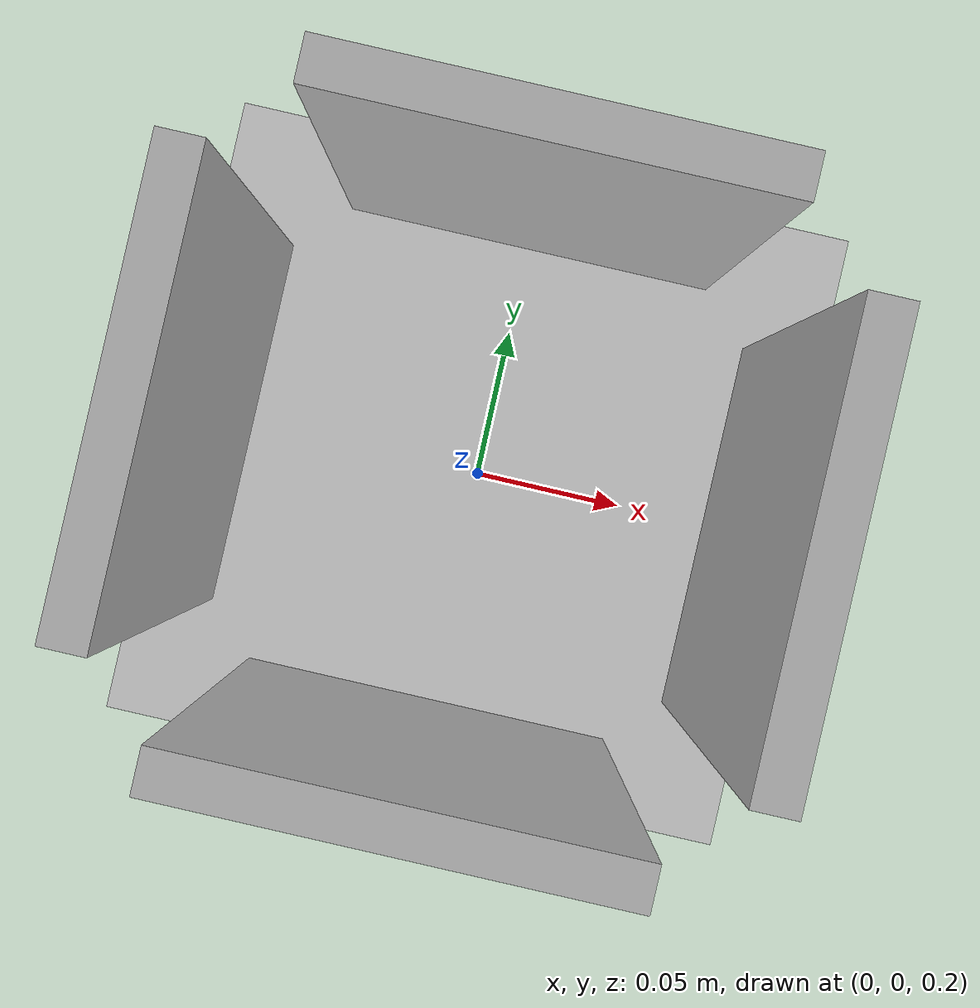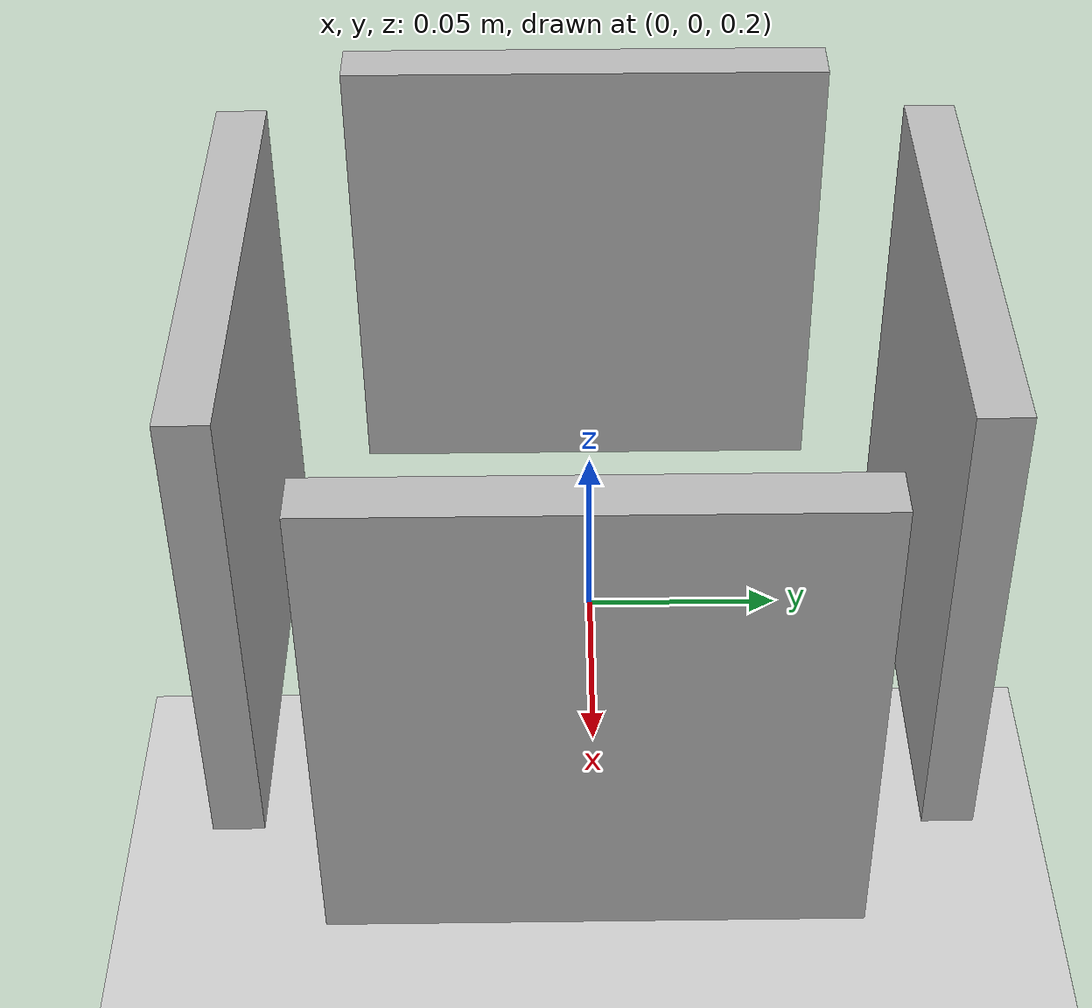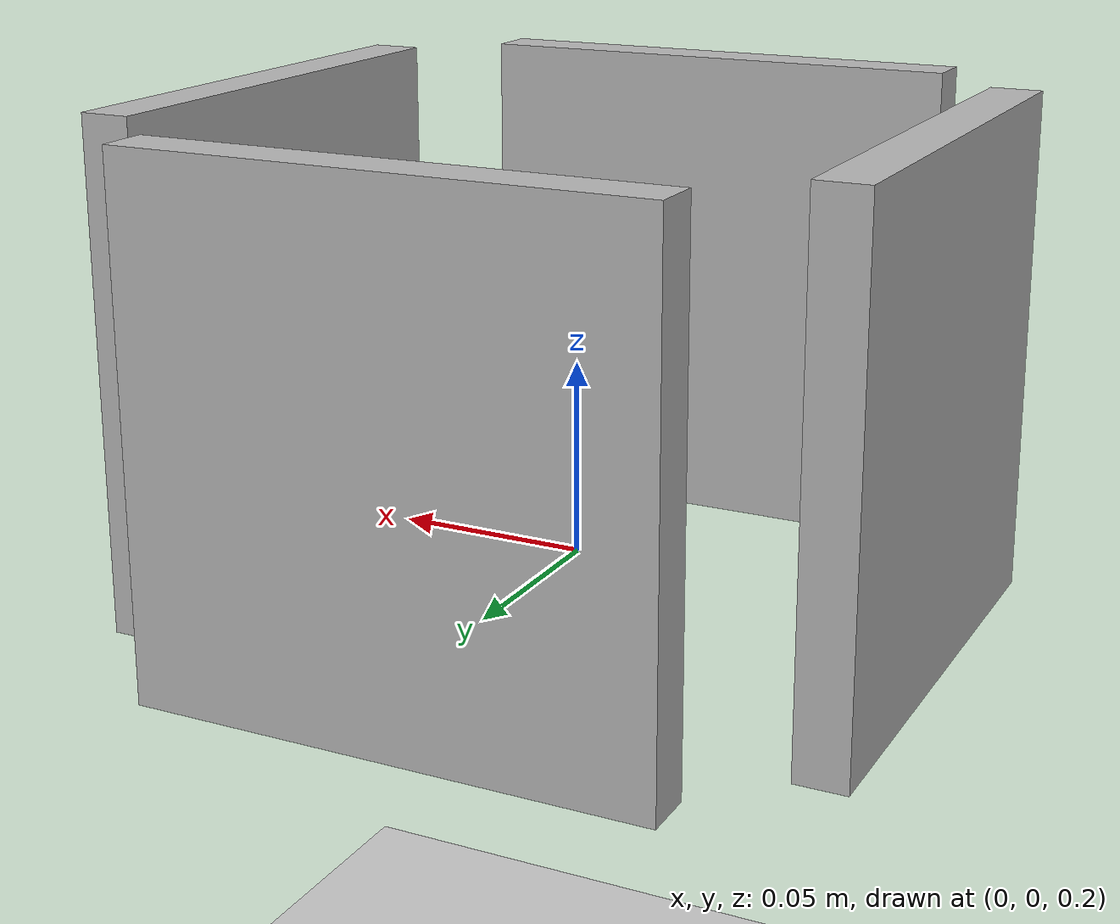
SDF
<?xml version="1.0" ?>

<sdf version="1.5">
	<world name="default">
		<!-- A global light source -->
		<light type="directional" name="my_light">
		    <pose>0 0 10 0 0 0</pose>
		    <diffuse>.9 .9 .9 1</diffuse>
		    <specular>.1 .1 .1 1</specular>
		    <attenuation>
		        <range>20</range>
		    </attenuation>
		    <direction>1 1 -1</direction>
		    <cast_shadows>true</cast_shadows>
		</light>
		<!-- A global light source -->
		<light type="directional" name="my_light_2">
		    <pose>0 0 -10 0 0 0</pose>
		    <diffuse>.9 .9 .9 1</diffuse>
		    <specular>.1 .1 .1 1</specular>
		    <attenuation>
		        <range>20</range>
		    </attenuation>
		    <direction>-1 -1 -1</direction>
		    <cast_shadows>true</cast_shadows>
		</light>
		<physics type='ode'>
		  <max_step_size>0.001</max_step_size>
		  <real_time_factor>0.25</real_time_factor>
		  <real_time_update_rate>1000</real_time_update_rate>
		  <gravity>0 0 -9.8</gravity>
		</physics>
		<!-- A ground plane -->
		<include>
			<uri>model://ground_plane</uri>
		</include>

        	<!-- aruco landmark 0 -->
		<include>
			<uri>model://aruco_marker_0</uri>
			<pose>0 -0.09 0.25 0 0 1.57079632679</pose>
		</include>

        	<!-- aruco landmark 1 -->
		<include>
			<uri>model://aruco_marker_1</uri>
			<pose>-0.09 0 0.25 0 0 3.14159265359</pose>
		</include>

        	<!-- aruco landmark 2 -->
		<include>
			<uri>model://aruco_marker_2</uri>
			<pose>0 0.09 0.25 0 0 -1.57079632679</pose>
		</include>

        	<!-- aruco landmark 3 -->
		<include>
			<uri>model://aruco_marker_3</uri>
			<pose>0.09 0 0.25 0 0 0</pose>
		</include>
	</world>
</sdf>

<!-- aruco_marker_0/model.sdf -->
<sdf version="1.5">
  <model name="aruco_marker_0">
    <static>true</static>
    <link name="base">
      <collision name="collision">
        <geometry>
          <box>
            <size>0.013125 0.13125 0.13125</size>
          </box>
        </geometry>
        <surface>
          <friction>
            <ode>
              <mu>100</mu>
              <mu2>50</mu2>
            </ode>
          </friction>
        </surface>
      </collision>

      <visual name="visual">
        <geometry>
          <box>
            <size>0.013125 0.13125 0.13125</size>
          </box>
        </geometry>
        <material>
          <script>
            <uri>model://aruco_marker_0/materials/scripts</uri>
            <uri>model://aruco_marker_0/materials/textures</uri>
            <name>aruco_marker_0/Diffuse</name>
          </script>
        </material>
      </visual>
    </link>

    <joint name="world_joint" type="fixed">
      <child>base</child>
      <parent>world</parent>
      <axis>
        <limit>
          <lower>0</lower>
          <upper>0</upper>
        </limit>
        <xyz>0 1 0</xyz>
        <dynamics>
          <damping>1.0</damping>
        </dynamics>
        <use_parent_model_frame>true</use_parent_model_frame>
      </axis>
      <physics>
        <ode>
          <cfm_damping>1</cfm_damping>
        </ode>
      </physics>
    </joint>
  </model>
</sdf>

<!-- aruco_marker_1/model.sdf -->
<sdf version="1.5">
  <model name="aruco_marker_1">
    <static>true</static>
    <link name="link">
      <collision name="collision">
        <geometry>
          <box>
            <size>0.013125 0.13125 0.13125</size>
          </box>
        </geometry>
        <surface>
          <friction>
            <ode>
              <mu>100</mu>
              <mu2>50</mu2>
            </ode>
          </friction>
        </surface>
      </collision>

      <visual name="visual">
        <geometry>
          <box>
            <size>0.013125 0.13125 0.13125</size>
          </box>
        </geometry>
        <material>
          <script>
            <uri>model://aruco_marker_1/materials/scripts</uri>
            <uri>model://aruco_marker_1/materials/textures</uri>
            <name>aruco_marker_1/Diffuse</name>
          </script>
        </material>
      </visual>
    </link>
  </model>
</sdf>

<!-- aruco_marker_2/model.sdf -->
<sdf version="1.5">
  <model name="aruco_marker_2">
    <static>true</static>
    <link name="link">
      <collision name="collision">
        <geometry>
          <box>
            <size>0.013125 0.13125 0.13125</size>
          </box>
        </geometry>
        <surface>
          <friction>
            <ode>
              <mu>100</mu>
              <mu2>50</mu2>
            </ode>
          </friction>
        </surface>
      </collision>

      <visual name="visual">
        <geometry>
          <box>
            <size>0.013125 0.13125 0.13125</size>
          </box>
        </geometry>
        <material>
          <script>
            <uri>model://aruco_marker_2/materials/scripts</uri>
            <uri>model://aruco_marker_2/materials/textures</uri>
            <name>aruco_marker_2/Diffuse</name>
          </script>
        </material>
      </visual>
    </link>
  </model>
</sdf>

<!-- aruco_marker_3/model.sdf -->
<sdf version="1.5">
  <model name="aruco_marker_3">
    <static>true</static>
    <link name="link">
      <collision name="collision">
        <geometry>
          <box>
            <size>0.013125 0.13125 0.13125</size>
          </box>
        </geometry>
        <surface>
          <friction>
            <ode>
              <mu>100</mu>
              <mu2>50</mu2>
            </ode>
          </friction>
        </surface>
      </collision>

      <visual name="visual">
        <geometry>
          <box>
            <size>0.013125 0.13125 0.13125</size>
          </box>
        </geometry>
        <material>
          <script>
            <uri>model://aruco_marker_3/materials/scripts</uri>
            <uri>model://aruco_marker_3/materials/textures</uri>
            <name>aruco_marker_3/Diffuse</name>
          </script>
        </material>
      </visual>
    </link>
  </model>
</sdf>
